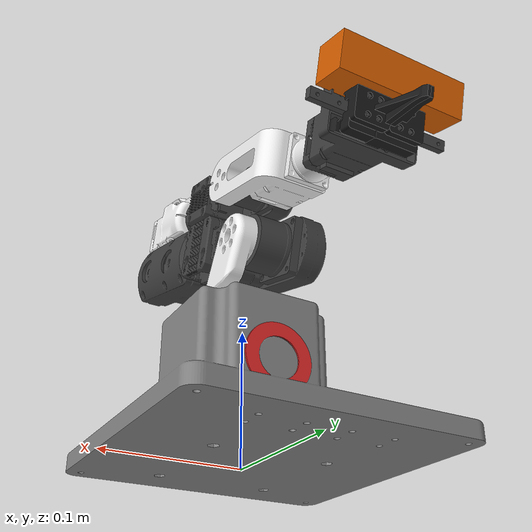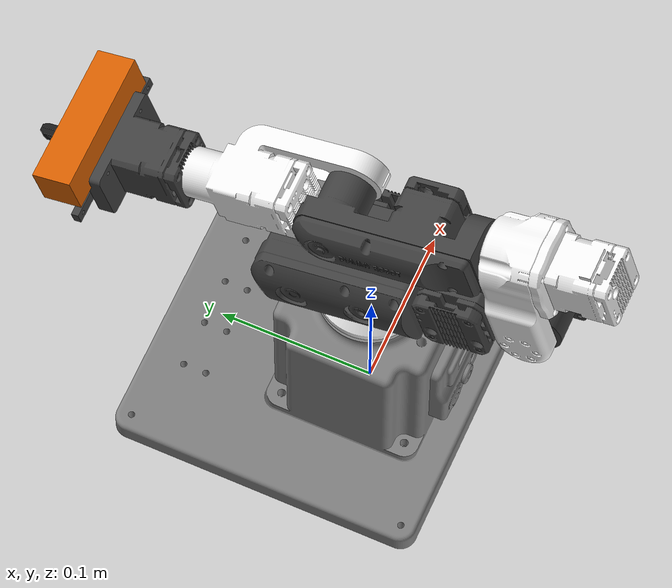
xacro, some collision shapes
<?xml version="1.0"?>
<robot xmlns:xacro="http://www.ros.org/wiki/xacro" name="dummy-ros2">
    <xacro:arg name="initial_positions_file" default="initial_positions.yaml" />
    <xacro:arg name="use_fake_hardware" default="true" />
    <xacro:arg name="serial_port" default="/dev/ttyACM0" />
    <xacro:arg name="baud_rate" default="115200" />
    <xacro:arg name="read_timeout_ms" default="50" />
    <xacro:arg name="activate_delay_ms" default="200" />
    <xacro:arg name="command_mode" default="2" />
    <xacro:arg name="startup_enable" default="true" />
    <xacro:arg name="write_epsilon" default="0.0005" />

    <!-- Import dummy-ros2 urdf file -->
    <xacro:include filename="$(find dummy-ros2_description)/urdf/dummy-ros2.xacro" />

    <!-- Import control_xacro -->
    <xacro:include filename="dummy-ros2.ros2_control.xacro" />

    <xacro:dummy-ros2_ros2_control
        name="DummySystem"
        initial_positions_file="$(arg initial_positions_file)"
        use_fake_hardware="$(arg use_fake_hardware)"
        serial_port="$(arg serial_port)"
        baud_rate="$(arg baud_rate)"
        read_timeout_ms="$(arg read_timeout_ms)"
        activate_delay_ms="$(arg activate_delay_ms)"
        command_mode="$(arg command_mode)"
        startup_enable="$(arg startup_enable)"
        write_epsilon="$(arg write_epsilon)"/>

</robot>

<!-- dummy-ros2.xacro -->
<robot name="dummy-ros2" xmlns:xacro="http://www.ros.org/wiki/xacro">

<xacro:include filename="$(find dummy-ros2_description)/urdf/materials.xacro" />
<xacro:include filename="$(find dummy-ros2_description)/urdf/dummy-ros2.trans" />
<xacro:include filename="$(find dummy-ros2_description)/urdf/dummy-ros2.gazebo" />

<link name="world" />

<joint name="world_joint" type="fixed">
  <parent link="world" />
  <child link="base_link" />
  <origin xyz="0.0 0.0 0.0" rpy="3.1415926536 3.1415926536 0.0" />
</joint>

<link name="light">
  <visual>
    <geometry>
      <mesh filename="file://$(find dummy-ros2_description)/meshes/light.stl" scale="0.001 0.001 0.001"/>
    </geometry>
    <material name="red"/>
    <origin xyz="0 -0.001 0" rpy="0 0 0"/>
  </visual>
</link>

<link name="base_link">
  <inertial>
    <mass value="3.091929"/>
    <inertia ixx="0.01097" ixy="-0.000001" ixz="0.00026" iyy="0.01064" iyz="-0.1431" izz="0.0124"/>
  </inertial>
  <visual>
    <origin xyz="0 0 0" rpy="0 0 0"/>
    <geometry>
      <mesh filename="file://$(find dummy-ros2_description)/meshes/base_link.stl" scale="0.001 0.001 0.001"/>
    </geometry>
    <material name="gray"/>
  </visual>
  <collision>
    <origin xyz="0.000011 -0.015221 0.042123" rpy="0 0 0"/>
    <geometry>
      <mesh filename="file://$(find dummy-ros2_description)/meshes/base_link.stl" scale="0.001 0.001 0.001"/>
    </geometry>
  </collision>
</link>

<joint name="light_fixed" type="fixed">
  <parent link="base_link"/>
  <child link="light"/>
  <origin xyz="0 0 0" rpy="0 0 0"/>
</joint>

<link name="link1_1_1">
  <inertial>
    <origin xyz="-0.009794 -0.010032 0.0" rpy="0 0 0"/>
    <mass value="0.057677"/>
    <inertia ixx="3.34e-05" ixy="-1.08e-05" ixz="6.33e-06" iyy="2.72e-05" iyz="9.88e-06" izz="4.04e-05"/>
  </inertial>
  <visual>
    <origin xyz="0 0 0" rpy="0 0 0"/>
    <geometry>
      <mesh filename="file://$(find dummy-ros2_description)/meshes/link1.stl" scale="0.001 0.001 0.001"/>
    </geometry>
    <material name="white"/>
  </visual>
  <collision>
    <origin xyz="0 0 0" rpy="0 0 0"/>
    <geometry>
      <mesh filename="file://$(find dummy-ros2_description)/meshes/link1.stl" scale="0.001 0.001 0.001"/>
    </geometry>
  </collision>
</link>

<joint name="Joint1" type="revolute">
  <origin xyz="0 0 0" rpy="0 0 0"/>
  <parent link="base_link"/>
  <child link="link1_1_1"/>
  <axis xyz="0 0 1"/>
  <limit lower="-3.05" upper="3.05" effort="50.0" velocity="1.0"/>
</joint>

<link name="link2_1_1">
  <inertial>
    <origin xyz="-0.000946 0.034772 0.172834" rpy="0 0 0"/>
    <mass value="0.667158"/>
    <inertia ixx="0.001915" ixy="0.000122" ixz="0.000033" iyy="0.000432" iyz="-0.000429" izz="0.001908"/>
  </inertial>
  <visual>
    <origin xyz="0 0.035 -0.1543" rpy="0 0 0"/>
    <geometry>
      <mesh filename="file://$(find dummy-ros2_description)/meshes/link2.stl" scale="0.001 0.001 0.001"/>
    </geometry>
    <material name="deepgray"/>
  </visual>
  <collision>
    <origin xyz="0 0.035 -0.1543" rpy="0 0 0"/>
    <geometry>
      <mesh filename="file://$(find dummy-ros2_description)/meshes/link2.stl" scale="0.001 0.001 0.001"/>
    </geometry>
  </collision>
</link>

<joint name="Joint2" type="revolute">
  <origin xyz="0 -0.035 0.15475" rpy="0 0 0"/>
  <parent link="link1_1_1"/>
  <child link="link2_1_1"/>
  <axis xyz="1 0 0"/>
  <limit lower="-1.35" upper="1.6" effort="50.0" velocity="1.0"/>
</joint>

<link name="link3_1_1">
  <inertial>
    <origin xyz="0.002113 0.111483 0.243542" rpy="0 0 0"/>
    <mass value="0.258306"/>
    <inertia ixx="0.000187" ixy="4.72e-06" ixz="2.13e-05" iyy="0.000124" iyz="-2.74e-05" izz="0.000148"/>
  </inertial>
  <visual>
    <origin xyz="0 -0.10603 -0.19253" rpy="0 0 0"/>
    <geometry>
      <mesh filename="file://$(find dummy-ros2_description)/meshes/link3.stl" scale="0.001 0.001 0.001"/>
    </geometry>
    <material name="white"/>
  </visual>
  <collision>
    <origin xyz="0 -0.10603 -0.19253" rpy="0 0 0"/>
    <geometry>
      <mesh filename="file://$(find dummy-ros2_description)/meshes/link3.stl" scale="0.001 0.001 0.001"/>
    </geometry>
  </collision>
</link>

<joint name="Joint3" type="revolute">
  <origin xyz="0 0.14103 0.03779" rpy="0 0 0"/>
  <parent link="link2_1_1"/>
  <child link="link3_1_1"/>
  <axis xyz="1 0 0"/>
  <limit lower="-1.0" upper="1.65" effort="50.0" velocity="1.0"/>
</joint>

<link name="link4_1_1">
  <inertial>
    <origin xyz="0.001435 0.018414 0.222244" rpy="0 0 0"/>
    <mass value="0.205755"/>
    <inertia ixx="0.000226" ixy="6.70e-06" ixz="1.88e-06" iyy="0.000067" iyz="-4.66e-05" izz="0.000228"/>
  </inertial>
  <visual>
    <origin xyz="0 -0.13923 -0.21054" rpy="-0.2618 0 0"/>
    <geometry>
      <mesh filename="file://$(find dummy-ros2_description)/meshes/link4.stl" scale="0.001 0.001 0.001"/>
    </geometry>
    <material name="deepgray"/>
  </visual>
  <collision>
    <origin xyz="0 -0.13923 -0.21054" rpy="-0.2618 0 0"/>
    <geometry>
      <mesh filename="file://$(find dummy-ros2_description)/meshes/link4.stl" scale="0.001 0.001 0.001"/>
    </geometry>
  </collision>
</link>

<joint name="Joint4" type="revolute">
  <origin xyz="0 -0.02602 0.04686" rpy="0.2618 0 0"/>
  <parent link="link3_1_1"/>
  <child link="link4_1_1"/>
  <axis xyz="0 1 0"/>
  <limit lower="-3.14" upper="3.14" effort="50.0" velocity="1.0"/>
</joint>

<link name="link5_1_1">
  <inertial>
    <origin xyz="-0.004732 -0.070836 0.198355" rpy="0 0 0"/>
    <mass value="0.17716"/>
    <inertia ixx="0.000124" ixy="1.97e-05" ixz="5.12e-06" iyy="0.000056" iyz="-2.22e-05" izz="0.000132"/>
  </inertial>
  <visual>
    <origin xyz="0 0.01895 -0.21288" rpy="0 0 0"/>
    <geometry>
      <mesh filename="file://$(find dummy-ros2_description)/meshes/link5.stl" scale="0.001 0.001 0.001"/>
    </geometry>
    <material name="white"/>
  </visual>
  <collision>
    <origin xyz="0 0.01895 -0.21288" rpy="0 0 0"/>
    <geometry>
      <mesh filename="file://$(find dummy-ros2_description)/meshes/link5.stl" scale="0.001 0.001 0.001"/>
    </geometry>
  </collision>
</link>

<joint name="Joint5" type="revolute">
  <origin xyz="0 -0.10245 0" rpy="-0.2618 0 0"/>
  <parent link="link4_1_1"/>
  <child link="link5_1_1"/>
  <axis xyz="1 0 0"/>
  <limit lower="-1.75" upper="1.75" effort="50.0" velocity="1.0"/>
</joint>

<link name="link6_1_1">
  <inertial>
    <origin xyz="-0.000152 -0.135449 0.181064" rpy="0 0 0"/>
    <mass value="0.120102"/>
    <inertia ixx="1.70e-05" ixy="2.92e-08" ixz="-5.09e-08" iyy="1.83e-05" iyz="2.28e-07" izz="1.74e-05"/>
  </inertial>
  <visual>
    <origin xyz="0 0.063 -0.21053" rpy="-0.2618 0 0"/>
    <geometry>
      <mesh filename="file://$(find dummy-ros2_description)/meshes/handbase.stl" scale="0.001 0.001 0.001"/>
    </geometry>
    <material name="deepgray"/>
  </visual>
  <collision>
    <origin xyz="0 0.063 -0.21053" rpy="-0.2618 0 0"/>
    <geometry>
      <mesh filename="file://$(find dummy-ros2_description)/meshes/handbase.stl" scale="0.001 0.001 0.001"/>
    </geometry>
  </collision>
</link>

<joint name="Joint6" type="revolute">
  <origin xyz="0 -0.09562 -0.02562" rpy="0.2618 0 0"/>
  <parent link="link5_1_1"/>
  <child link="link6_1_1"/>
  <axis xyz="0 1 0"/>
  <limit lower="-6.28" upper="6.28" effort="30.0" velocity="1.0"/>
</joint>

<link name="gripper_carrier">
  <inertial>
    <mass value="0.001"/>
    <inertia ixx="1e-06" ixy="0" ixz="0" iyy="1e-06" iyz="0" izz="1e-06"/>
  </inertial>
</link>

<joint name="Joint7" type="prismatic">
  <origin xyz="0 0 0" rpy="0 0 0"/>
  <parent link="link6_1_1"/>
  <child link="gripper_carrier"/>
  <axis xyz="1 0 0"/>
  <limit lower="0.0" upper="0.012" effort="30.0" velocity="0.03"/>
</joint>

<link name="finger_left">
  <inertial>
    <mass value="0.020"/>
    <inertia ixx="0.000005" ixy="0" ixz="0" iyy="0.000005" iyz="0" izz="0.000005"/>
  </inertial>
  <visual>
    <origin xyz="0 0.063 -0.21053" rpy="-0.2618 0 0"/>
    <geometry>
      <mesh filename="file://$(find dummy-ros2_description)/meshes/finger_left.stl" scale="0.001 0.001 0.001"/>
    </geometry>
    <material name="black"/>
  </visual>
  <collision>
    <origin xyz="0 0.063 -0.21053" rpy="-0.2618 0 0"/>
    <geometry>
      <mesh filename="file://$(find dummy-ros2_description)/meshes/finger_left.stl" scale="0.001 0.001 0.001"/>
    </geometry>
  </collision>
</link>

<joint name="finger_left_joint" type="fixed">
  <parent link="gripper_carrier"/>
  <child link="finger_left"/>
  <origin xyz="0 0 0" rpy="0 0 0"/>
</joint>

<link name="finger_right">
  <inertial>
    <mass value="0.020"/>
    <inertia ixx="0.000005" ixy="0" ixz="0" iyy="0.000005" iyz="0" izz="0.000005"/>
  </inertial>
  <visual>
    <origin xyz="0 0.063 -0.21053" rpy="-0.2618 0 0"/>
    <geometry>
      <mesh filename="file://$(find dummy-ros2_description)/meshes/finger_right.stl" scale="0.001 0.001 0.001"/>
    </geometry>
    <material name="black"/>
  </visual>
  <collision>
    <origin xyz="0 0.063 -0.21053" rpy="-0.2618 0 0"/>
    <geometry>
      <mesh filename="file://$(find dummy-ros2_description)/meshes/finger_right.stl" scale="0.001 0.001 0.001"/>
    </geometry>
  </collision>
</link>

<joint name="finger_right_joint" type="prismatic">
  <parent link="link6_1_1"/>
  <child link="finger_right"/>
  <origin xyz="0 0 0" rpy="0 0 0"/>
  <axis xyz="-1 0 0"/>
  <limit lower="0.0" upper="0.012" effort="30.0" velocity="0.03"/>
  <mimic joint="Joint7" multiplier="1.0" offset="0.0"/>
</joint>

<link name="camera_bottom_screw_frame"/>

<joint name="camera_mount_joint" type="fixed">
  <parent link="link6_1_1"/>
  <child link="camera_bottom_screw_frame"/>
  <origin xyz="0.009 -0.08 0.010" rpy="0 0 0"/>
</joint>

<link name="camera_link">
  <inertial>
    <mass value="0.072"/>
    <origin xyz="0 0 0" rpy="0 0 0"/>
    <inertia ixx="0.003881243" ixy="0.0" ixz="0.0" iyy="0.000498940" iyz="0.0" izz="0.003879257"/>
  </inertial>
  <visual>
    <origin xyz="0.0043 -0.0175 0" rpy="1.57079632679 0 1.57079632679"/>
    <geometry>
      <mesh filename="file://$(find dummy-ros2_description)/meshes/d435.dae"/>
    </geometry>
  </visual>
  <collision>
    <origin xyz="0 -0.0175 0" rpy="0 0 0"/>
    <geometry>
      <box size="0.02505 0.090 0.025"/>
    </geometry>
  </collision>
</link>

<joint name="camera_link_joint" type="fixed">
  <origin xyz="0.0106 0.0175 0.0125" rpy="0 0 -1.5708"/>
  <parent link="camera_bottom_screw_frame"/>
  <child link="camera_link"/>
</joint>

<link name="camera_depth_frame"/>
<joint name="camera_depth_joint" type="fixed">
  <origin xyz="0 0 0" rpy="0 0 0"/>
  <parent link="camera_link"/>
  <child link="camera_depth_frame"/>
</joint>

<link name="camera_depth_optical_frame"/>
<joint name="camera_depth_optical_joint" type="fixed">
  <origin xyz="0 0 0" rpy="-1.57079632679 0 -1.57079632679"/>
  <parent link="camera_depth_frame"/>
  <child link="camera_depth_optical_frame"/>
</joint>

<link name="camera_infra1_frame"/>
<joint name="camera_infra1_joint" type="fixed">
  <origin xyz="0 0 0" rpy="0 0 0"/>
  <parent link="camera_link"/>
  <child link="camera_infra1_frame"/>
</joint>

<link name="camera_infra1_optical_frame"/>
<joint name="camera_infra1_optical_joint" type="fixed">
  <origin xyz="0 0 0" rpy="-1.57079632679 0 -1.57079632679"/>
  <parent link="camera_infra1_frame"/>
  <child link="camera_infra1_optical_frame"/>
</joint>

<link name="camera_infra2_frame"/>
<joint name="camera_infra2_joint" type="fixed">
  <origin xyz="0 -0.050 0" rpy="0 0 0"/>
  <parent link="camera_link"/>
  <child link="camera_infra2_frame"/>
</joint>

<link name="camera_infra2_optical_frame"/>
<joint name="camera_infra2_optical_joint" type="fixed">
  <origin xyz="0 0 0" rpy="-1.57079632679 0 -1.57079632679"/>
  <parent link="camera_infra2_frame"/>
  <child link="camera_infra2_optical_frame"/>
</joint>

<link name="camera_color_frame"/>
<joint name="camera_color_joint" type="fixed">
  <origin xyz="0 0.015 0" rpy="0 0 0"/>
  <parent link="camera_link"/>
  <child link="camera_color_frame"/>
</joint>

<link name="camera_color_optical_frame"/>
<joint name="camera_color_optical_joint" type="fixed">
  <origin xyz="0 0 0" rpy="-1.57079632679 0 -1.57079632679"/>
  <parent link="camera_color_frame"/>
  <child link="camera_color_optical_frame"/>
</joint>

<link name="camera_accel_frame"/>
<joint name="camera_accel_joint" type="fixed">
  <origin xyz="-0.01174 -0.00552 0.0051" rpy="0 0 0"/>
  <parent link="camera_link"/>
  <child link="camera_accel_frame"/>
</joint>

<link name="camera_accel_optical_frame"/>
<joint name="camera_accel_optical_joint" type="fixed">
  <origin xyz="0 0 0" rpy="-1.57079632679 0 -1.57079632679"/>
  <parent link="camera_accel_frame"/>
  <child link="camera_accel_optical_frame"/>
</joint>

<link name="camera_gyro_frame"/>
<joint name="camera_gyro_joint" type="fixed">
  <origin xyz="-0.01174 -0.00552 0.0051" rpy="0 0 0"/>
  <parent link="camera_link"/>
  <child link="camera_gyro_frame"/>
</joint>

<link name="camera_gyro_optical_frame"/>
<joint name="camera_gyro_optical_joint" type="fixed">
  <origin xyz="0 0 0" rpy="-1.57079632679 0 -1.57079632679"/>
  <parent link="camera_gyro_frame"/>
  <child link="camera_gyro_optical_frame"/>
</joint>

</robot>

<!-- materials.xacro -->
<robot name="dummy-ros2" xmlns:xacro="http://www.ros.org/wiki/xacro" >

<material name="silver">
  <color rgba="0.700 0.700 0.700 1.000"/>
</material>

<material name="white">
  <color rgba="0.95 0.95 0.95 1.000"/>
</material>

<material name="gray">
  <color rgba="0.50 0.50 0.50 1.000"/>
</material>

<material name="deepgray">
  <color rgba="0.25 0.25 0.25 1.000"/>
</material>

<material name="black">
  <color rgba="0.10 0.10 0.10 1.000"/>
</material>

<material name="red">
  <color rgba="0.85 0.15 0.15 1.000"/>
</material>

</robot>
